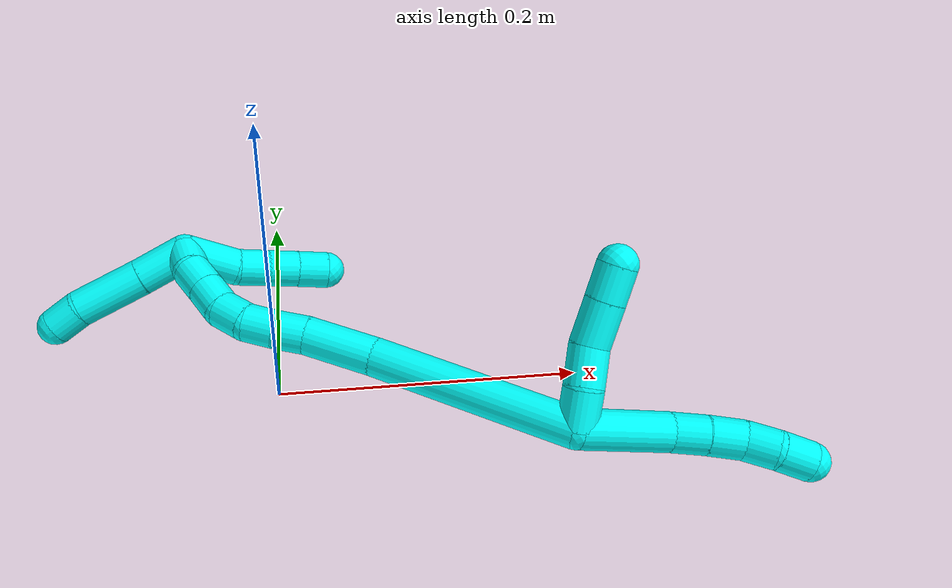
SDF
<sdf version="1.7">
 <world name="default">
  <model name="3">
   <static>0</static>
   <link name="3">
    <collision name="collision-cylinder-e_1_2_8">
     <pose>0.012243 -0.016707 -0.022681 2.5067 0.409994 1.12841</pose>
     <geometry><cylinder><radius>0.0125</radius><length>0.061432</length></cylinder></geometry>
     <surface>
      <friction><ode><mu>1.16</mu><mu2>1.16</mu2><slip1>0</slip1><slip2>0</slip2></ode></friction>
      <contact><ode><kp>1e+06</kp><kd>1</kd><max_vel>0</max_vel><min_depth>0.001</min_depth></ode></contact>
     </surface>
    </collision>
    <visual name="visual-cylinder-e_1_2_8">
     <pose>0.012243 -0.016707 -0.022681 2.5067 0.409994 1.12841</pose>
     <geometry><cylinder><radius>0.0125</radius><length>0.061432</length></cylinder></geometry>
     <material><ambient>0.003922 1 0.996078 1</ambient></material>
    </visual>
    <collision name="collision-cylinder-e_2_8_9">
     <pose>0.03134 -0.037682 -0.053493 2.65831 0.641085 1.8644</pose>
     <geometry><cylinder><radius>0.0125</radius><length>0.022917</length></cylinder></geometry>
     <surface>
      <friction><ode><mu>1.16</mu><mu2>1.16</mu2><slip1>0</slip1><slip2>0</slip2></ode></friction>
      <contact><ode><kp>1e+06</kp><kd>1</kd><max_vel>0</max_vel><min_depth>0.001</min_depth></ode></contact>
     </surface>
    </collision>
    <visual name="visual-cylinder-e_2_8_9">
     <pose>0.03134 -0.037682 -0.053493 2.65831 0.641085 1.8644</pose>
     <geometry><cylinder><radius>0.0125</radius><length>0.022917</length></cylinder></geometry>
     <material><ambient>0.003922 1 0.996078 1</ambient></material>
    </visual>
    <collision name="collision-cylinder-e_3_9_10">
     <pose>0.045148 -0.047001 -0.069573 2.57549 0.636135 1.69444</pose>
     <geometry><cylinder><radius>0.0125</radius><length>0.023414</length></cylinder></geometry>
     <surface>
      <friction><ode><mu>1.16</mu><mu2>1.16</mu2><slip1>0</slip1><slip2>0</slip2></ode></friction>
      <contact><ode><kp>1e+06</kp><kd>1</kd><max_vel>0</max_vel><min_depth>0.001</min_depth></ode></contact>
     </surface>
    </collision>
    <visual name="visual-cylinder-e_3_9_10">
     <pose>0.045148 -0.047001 -0.069573 2.57549 0.636135 1.69444</pose>
     <geometry><cylinder><radius>0.0125</radius><length>0.023414</length></cylinder></geometry>
     <material><ambient>0.003922 1 0.996078 1</ambient></material>
    </visual>
    <collision name="collision-cylinder-e_4_10_11">
     <pose>0.060489 -0.055036 -0.082861 2.632 0.940527 2.19453</pose>
     <geometry><cylinder><radius>0.0125</radius><length>0.02076</length></cylinder></geometry>
     <surface>
      <friction><ode><mu>1.16</mu><mu2>1.16</mu2><slip1>0</slip1><slip2>0</slip2></ode></friction>
      <contact><ode><kp>1e+06</kp><kd>1</kd><max_vel>0</max_vel><min_depth>0.001</min_depth></ode></contact>
     </surface>
    </collision>
    <visual name="visual-cylinder-e_4_10_11">
     <pose>0.060489 -0.055036 -0.082861 2.632 0.940527 2.19453</pose>
     <geometry><cylinder><radius>0.0125</radius><length>0.02076</length></cylinder></geometry>
     <material><ambient>0.003922 1 0.996078 1</ambient></material>
    </visual>
    <collision name="collision-cylinder-e_5_11_6">
     <pose>0.075828 -0.063931 -0.09386 2.33435 0.704406 1.42121</pose>
     <geometry><cylinder><radius>0.0125</radius><length>0.021477</length></cylinder></geometry>
     <surface>
      <friction><ode><mu>1.16</mu><mu2>1.16</mu2><slip1>0</slip1><slip2>0</slip2></ode></friction>
      <contact><ode><kp>1e+06</kp><kd>1</kd><max_vel>0</max_vel><min_depth>0.001</min_depth></ode></contact>
     </surface>
    </collision>
    <visual name="visual-cylinder-e_5_11_6">
     <pose>0.075828 -0.063931 -0.09386 2.33435 0.704406 1.42121</pose>
     <geometry><cylinder><radius>0.0125</radius><length>0.021477</length></cylinder></geometry>
     <material><ambient>0.003922 1 0.996078 1</ambient></material>
    </visual>
    <collision name="collision-cylinder-e_1_2_12">
     <pose>-0.004228 0.007885 -0.008624 -2.40091 -0.347134 0.84834</pose>
     <geometry><cylinder><radius>0.0125</radius><length>0.024854</length></cylinder></geometry>
     <surface>
      <friction><ode><mu>1.16</mu><mu2>1.16</mu2><slip1>0</slip1><slip2>0</slip2></ode></friction>
      <contact><ode><kp>1e+06</kp><kd>1</kd><max_vel>0</max_vel><min_depth>0.001</min_depth></ode></contact>
     </surface>
    </collision>
    <visual name="visual-cylinder-e_1_2_12">
     <pose>-0.004228 0.007885 -0.008624 -2.40091 -0.347134 0.84834</pose>
     <geometry><cylinder><radius>0.0125</radius><length>0.024854</length></cylinder></geometry>
     <material><ambient>0.003922 1 0.996078 1</ambient></material>
    </visual>
    <collision name="collision-cylinder-e_2_12_13">
     <pose>-0.014278 0.021762 -0.026402 -2.56203 -0.489085 1.39366</pose>
     <geometry><cylinder><radius>0.0125</radius><length>0.024787</length></cylinder></geometry>
     <surface>
      <friction><ode><mu>1.16</mu><mu2>1.16</mu2><slip1>0</slip1><slip2>0</slip2></ode></friction>
      <contact><ode><kp>1e+06</kp><kd>1</kd><max_vel>0</max_vel><min_depth>0.001</min_depth></ode></contact>
     </surface>
    </collision>
    <visual name="visual-cylinder-e_2_12_13">
     <pose>-0.014278 0.021762 -0.026402 -2.56203 -0.489085 1.39366</pose>
     <geometry><cylinder><radius>0.0125</radius><length>0.024787</length></cylinder></geometry>
     <material><ambient>0.003922 1 0.996078 1</ambient></material>
    </visual>
    <collision name="collision-cylinder-e_3_13_14">
     <pose>-0.022938 0.036164 -0.046564 -2.48921 -0.202007 0.582183</pose>
     <geometry><cylinder><radius>0.0125</radius><length>0.028282</length></cylinder></geometry>
     <surface>
      <friction><ode><mu>1.16</mu><mu2>1.16</mu2><slip1>0</slip1><slip2>0</slip2></ode></friction>
      <contact><ode><kp>1e+06</kp><kd>1</kd><max_vel>0</max_vel><min_depth>0.001</min_depth></ode></contact>
     </surface>
    </collision>
    <visual name="visual-cylinder-e_3_13_14">
     <pose>-0.022938 0.036164 -0.046564 -2.48921 -0.202007 0.582183</pose>
     <geometry><cylinder><radius>0.0125</radius><length>0.028282</length></cylinder></geometry>
     <material><ambient>0.003922 1 0.996078 1</ambient></material>
    </visual>
    <collision name="collision-cylinder-e_4_14_5">
     <pose>-0.028115 0.05107 -0.066186 -2.49545 -0.213637 0.619889</pose>
     <geometry><cylinder><radius>0.0125</radius><length>0.022077</length></cylinder></geometry>
     <surface>
      <friction><ode><mu>1.16</mu><mu2>1.16</mu2><slip1>0</slip1><slip2>0</slip2></ode></friction>
      <contact><ode><kp>1e+06</kp><kd>1</kd><max_vel>0</max_vel><min_depth>0.001</min_depth></ode></contact>
     </surface>
    </collision>
    <visual name="visual-cylinder-e_4_14_5">
     <pose>-0.028115 0.05107 -0.066186 -2.49545 -0.213637 0.619889</pose>
     <geometry><cylinder><radius>0.0125</radius><length>0.022077</length></cylinder></geometry>
     <material><ambient>0.003922 1 0.996078 1</ambient></material>
    </visual>
    <collision name="collision-cylinder-e_1_2_15">
     <pose>-0.058164 0.014002 0.029221 -0.44684 -1.06253 0.26546</pose>
     <geometry><cylinder><radius>0.0125</radius><length>0.133162</length></cylinder></geometry>
     <surface>
      <friction><ode><mu>1.16</mu><mu2>1.16</mu2><slip1>0</slip1><slip2>0</slip2></ode></friction>
      <contact><ode><kp>1e+06</kp><kd>1</kd><max_vel>0</max_vel><min_depth>0.001</min_depth></ode></contact>
     </surface>
    </collision>
    <visual name="visual-cylinder-e_1_2_15">
     <pose>-0.058164 0.014002 0.029221 -0.44684 -1.06253 0.26546</pose>
     <geometry><cylinder><radius>0.0125</radius><length>0.133162</length></cylinder></geometry>
     <material><ambient>0.003922 1 0.996078 1</ambient></material>
    </visual>
    <collision name="collision-cylinder-e_2_15_16">
     <pose>-0.1346 0.035182 0.06991 -0.559328 -0.933414 0.287396</pose>
     <geometry><cylinder><radius>0.0125</radius><length>0.045471</length></cylinder></geometry>
     <surface>
      <friction><ode><mu>1.16</mu><mu2>1.16</mu2><slip1>0</slip1><slip2>0</slip2></ode></friction>
      <contact><ode><kp>1e+06</kp><kd>1</kd><max_vel>0</max_vel><min_depth>0.001</min_depth></ode></contact>
     </surface>
    </collision>
    <visual name="visual-cylinder-e_2_15_16">
     <pose>-0.1346 0.035182 0.06991 -0.559328 -0.933414 0.287396</pose>
     <geometry><cylinder><radius>0.0125</radius><length>0.045471</length></cylinder></geometry>
     <material><ambient>0.003922 1 0.996078 1</ambient></material>
    </visual>
    <collision name="collision-cylinder-e_3_16_17">
     <pose>-0.159983 0.045731 0.087583 -0.497453 -0.788949 0.210684</pose>
     <geometry><cylinder><radius>0.0125</radius><length>0.020043</length></cylinder></geometry>
     <surface>
      <friction><ode><mu>1.16</mu><mu2>1.16</mu2><slip1>0</slip1><slip2>0</slip2></ode></friction>
      <contact><ode><kp>1e+06</kp><kd>1</kd><max_vel>0</max_vel><min_depth>0.001</min_depth></ode></contact>
     </surface>
    </collision>
    <visual name="visual-cylinder-e_3_16_17">
     <pose>-0.159983 0.045731 0.087583 -0.497453 -0.788949 0.210684</pose>
     <geometry><cylinder><radius>0.0125</radius><length>0.020043</length></cylinder></geometry>
     <material><ambient>0.003922 1 0.996078 1</ambient></material>
    </visual>
    <collision name="collision-cylinder-e_4_17_18">
     <pose>-0.174775 0.052214 0.099419 -0.505109 -0.873511 0.239785</pose>
     <geometry><cylinder><radius>0.0125</radius><length>0.020038</length></cylinder></geometry>
     <surface>
      <friction><ode><mu>1.16</mu><mu2>1.16</mu2><slip1>0</slip1><slip2>0</slip2></ode></friction>
      <contact><ode><kp>1e+06</kp><kd>1</kd><max_vel>0</max_vel><min_depth>0.001</min_depth></ode></contact>
     </surface>
    </collision>
    <visual name="visual-cylinder-e_4_17_18">
     <pose>-0.174775 0.052214 0.099419 -0.505109 -0.873511 0.239785</pose>
     <geometry><cylinder><radius>0.0125</radius><length>0.020038</length></cylinder></geometry>
     <material><ambient>0.003922 1 0.996078 1</ambient></material>
    </visual>
    <collision name="collision-cylinder-e_5_18_19">
     <pose>-0.191936 0.057278 0.108023 -0.580586 -1.21189 0.408217</pose>
     <geometry><cylinder><radius>0.0125</radius><length>0.020252</length></cylinder></geometry>
     <surface>
      <friction><ode><mu>1.16</mu><mu2>1.16</mu2><slip1>0</slip1><slip2>0</slip2></ode></friction>
      <contact><ode><kp>1e+06</kp><kd>1</kd><max_vel>0</max_vel><min_depth>0.001</min_depth></ode></contact>
     </surface>
    </collision>
    <visual name="visual-cylinder-e_5_18_19">
     <pose>-0.191936 0.057278 0.108023 -0.580586 -1.21189 0.408217</pose>
     <geometry><cylinder><radius>0.0125</radius><length>0.020252</length></cylinder></geometry>
     <material><ambient>0.003922 1 0.996078 1</ambient></material>
    </visual>
    <collision name="collision-cylinder-e_6_19_20">
     <pose>-0.211415 0.060811 0.110549 -1.84656 -1.40779 1.68613</pose>
     <geometry><cylinder><radius>0.0125</radius><length>0.020264</length></cylinder></geometry>
     <surface>
      <friction><ode><mu>1.16</mu><mu2>1.16</mu2><slip1>0</slip1><slip2>0</slip2></ode></friction>
      <contact><ode><kp>1e+06</kp><kd>1</kd><max_vel>0</max_vel><min_depth>0.001</min_depth></ode></contact>
     </surface>
    </collision>
    <visual name="visual-cylinder-e_6_19_20">
     <pose>-0.211415 0.060811 0.110549 -1.84656 -1.40779 1.68613</pose>
     <geometry><cylinder><radius>0.0125</radius><length>0.020264</length></cylinder></geometry>
     <material><ambient>0.003922 1 0.996078 1</ambient></material>
    </visual>
    <collision name="collision-cylinder-e_7_20_21">
     <pose>-0.231525 0.063966 0.109797 -1.76181 -1.41365 1.60518</pose>
     <geometry><cylinder><radius>0.0125</radius><length>0.020478</length></cylinder></geometry>
     <surface>
      <friction><ode><mu>1.16</mu><mu2>1.16</mu2><slip1>0</slip1><slip2>0</slip2></ode></friction>
      <contact><ode><kp>1e+06</kp><kd>1</kd><max_vel>0</max_vel><min_depth>0.001</min_depth></ode></contact>
     </surface>
    </collision>
    <visual name="visual-cylinder-e_7_20_21">
     <pose>-0.231525 0.063966 0.109797 -1.76181 -1.41365 1.60518</pose>
     <geometry><cylinder><radius>0.0125</radius><length>0.020478</length></cylinder></geometry>
     <material><ambient>0.003922 1 0.996078 1</ambient></material>
    </visual>
    <collision name="collision-cylinder-e_8_21_1">
     <pose>-0.251444 0.064842 0.106983 2.87031 -1.31115 -2.79032</pose>
     <geometry><cylinder><radius>0.0125</radius><length>0.020292</length></cylinder></geometry>
     <surface>
      <friction><ode><mu>1.16</mu><mu2>1.16</mu2><slip1>0</slip1><slip2>0</slip2></ode></friction>
      <contact><ode><kp>1e+06</kp><kd>1</kd><max_vel>0</max_vel><min_depth>0.001</min_depth></ode></contact>
     </surface>
    </collision>
    <visual name="visual-cylinder-e_8_21_1">
     <pose>-0.251444 0.064842 0.106983 2.87031 -1.31115 -2.79032</pose>
     <geometry><cylinder><radius>0.0125</radius><length>0.020292</length></cylinder></geometry>
     <material><ambient>0.003922 1 0.996078 1</ambient></material>
    </visual>
    <collision name="collision-cylinder-e_1_1_22">
     <pose>-0.264811 0.064271 0.120819 -0.007806 -0.214489 0.00084</pose>
     <geometry><cylinder><radius>0.0125</radius><length>0.033458</length></cylinder></geometry>
     <surface>
      <friction><ode><mu>1.16</mu><mu2>1.16</mu2><slip1>0</slip1><slip2>0</slip2></ode></friction>
      <contact><ode><kp>1e+06</kp><kd>1</kd><max_vel>0</max_vel><min_depth>0.001</min_depth></ode></contact>
     </surface>
    </collision>
    <visual name="visual-cylinder-e_1_1_22">
     <pose>-0.264811 0.064271 0.120819 -0.007806 -0.214489 0.00084</pose>
     <geometry><cylinder><radius>0.0125</radius><length>0.033458</length></cylinder></geometry>
     <material><ambient>0.003922 1 0.996078 1</ambient></material>
    </visual>
    <collision name="collision-cylinder-e_2_22_23">
     <pose>-0.274102 0.064766 0.159343 -0.016566 -0.25279 0.002105</pose>
     <geometry><cylinder><radius>0.0125</radius><length>0.045821</length></cylinder></geometry>
     <surface>
      <friction><ode><mu>1.16</mu><mu2>1.16</mu2><slip1>0</slip1><slip2>0</slip2></ode></friction>
      <contact><ode><kp>1e+06</kp><kd>1</kd><max_vel>0</max_vel><min_depth>0.001</min_depth></ode></contact>
     </surface>
    </collision>
    <visual name="visual-cylinder-e_2_22_23">
     <pose>-0.274102 0.064766 0.159343 -0.016566 -0.25279 0.002105</pose>
     <geometry><cylinder><radius>0.0125</radius><length>0.045821</length></cylinder></geometry>
     <material><ambient>0.003922 1 0.996078 1</ambient></material>
    </visual>
    <collision name="collision-cylinder-e_3_23_4">
     <pose>-0.282335 0.063115 0.191371 0.202126 -0.24404 -0.02487</pose>
     <geometry><cylinder><radius>0.0125</radius><length>0.020721</length></cylinder></geometry>
     <surface>
      <friction><ode><mu>1.16</mu><mu2>1.16</mu2><slip1>0</slip1><slip2>0</slip2></ode></friction>
      <contact><ode><kp>1e+06</kp><kd>1</kd><max_vel>0</max_vel><min_depth>0.001</min_depth></ode></contact>
     </surface>
    </collision>
    <visual name="visual-cylinder-e_3_23_4">
     <pose>-0.282335 0.063115 0.191371 0.202126 -0.24404 -0.02487</pose>
     <geometry><cylinder><radius>0.0125</radius><length>0.020721</length></cylinder></geometry>
     <material><ambient>0.003922 1 0.996078 1</ambient></material>
    </visual>
    <collision name="collision-cylinder-e_1_1_24">
     <pose>-0.252882 0.052013 0.093648 2.29942 0.475359 0.991667</pose>
     <geometry><cylinder><radius>0.0125</radius><length>0.036571</length></cylinder></geometry>
     <surface>
      <friction><ode><mu>1.16</mu><mu2>1.16</mu2><slip1>0</slip1><slip2>0</slip2></ode></friction>
      <contact><ode><kp>1e+06</kp><kd>1</kd><max_vel>0</max_vel><min_depth>0.001</min_depth></ode></contact>
     </surface>
    </collision>
    <visual name="visual-cylinder-e_1_1_24">
     <pose>-0.252882 0.052013 0.093648 2.29942 0.475359 0.991667</pose>
     <geometry><cylinder><radius>0.0125</radius><length>0.036571</length></cylinder></geometry>
     <material><ambient>0.003922 1 0.996078 1</ambient></material>
    </visual>
    <collision name="collision-cylinder-e_2_24_25">
     <pose>-0.241595 0.033482 0.07461 2.4795 0.273228 0.760973</pose>
     <geometry><cylinder><radius>0.0125</radius><length>0.021628</length></cylinder></geometry>
     <surface>
      <friction><ode><mu>1.16</mu><mu2>1.16</mu2><slip1>0</slip1><slip2>0</slip2></ode></friction>
      <contact><ode><kp>1e+06</kp><kd>1</kd><max_vel>0</max_vel><min_depth>0.001</min_depth></ode></contact>
     </surface>
    </collision>
    <visual name="visual-cylinder-e_2_24_25">
     <pose>-0.241595 0.033482 0.07461 2.4795 0.273228 0.760973</pose>
     <geometry><cylinder><radius>0.0125</radius><length>0.021628</length></cylinder></geometry>
     <material><ambient>0.003922 1 0.996078 1</ambient></material>
    </visual>
    <collision name="collision-cylinder-e_3_25_26">
     <pose>-0.234561 0.021766 0.058242 2.5641 0.40004 1.19774</pose>
     <geometry><cylinder><radius>0.0125</radius><length>0.021136</length></cylinder></geometry>
     <surface>
      <friction><ode><mu>1.16</mu><mu2>1.16</mu2><slip1>0</slip1><slip2>0</slip2></ode></friction>
      <contact><ode><kp>1e+06</kp><kd>1</kd><max_vel>0</max_vel><min_depth>0.001</min_depth></ode></contact>
     </surface>
    </collision>
    <visual name="visual-cylinder-e_3_25_26">
     <pose>-0.234561 0.021766 0.058242 2.5641 0.40004 1.19774</pose>
     <geometry><cylinder><radius>0.0125</radius><length>0.021136</length></cylinder></geometry>
     <material><ambient>0.003922 1 0.996078 1</ambient></material>
    </visual>
    <collision name="collision-cylinder-e_4_26_3">
     <pose>-0.226082 0.011406 0.042197 2.57261 0.435961 1.29651</pose>
     <geometry><cylinder><radius>0.0125</radius><length>0.020664</length></cylinder></geometry>
     <surface>
      <friction><ode><mu>1.16</mu><mu2>1.16</mu2><slip1>0</slip1><slip2>0</slip2></ode></friction>
      <contact><ode><kp>1e+06</kp><kd>1</kd><max_vel>0</max_vel><min_depth>0.001</min_depth></ode></contact>
     </surface>
    </collision>
    <visual name="visual-cylinder-e_4_26_3">
     <pose>-0.226082 0.011406 0.042197 2.57261 0.435961 1.29651</pose>
     <geometry><cylinder><radius>0.0125</radius><length>0.020664</length></cylinder></geometry>
     <material><ambient>0.003922 1 0.996078 1</ambient></material>
    </visual>
    <collision name="collision-sphere-3">
     <pose>-0.221719 0.00636 0.034307 0 -0 0</pose>
     <geometry><sphere><radius>0.0125</radius></sphere></geometry>
     <surface>
      <friction><ode><mu>1.16</mu><mu2>1.16</mu2><slip1>0</slip1><slip2>0</slip2></ode></friction>
      <contact><ode><kp>1e+06</kp><kd>1</kd><max_vel>0</max_vel><min_depth>0.001</min_depth></ode></contact>
     </surface>
    </collision>
    <visual name="visual-sphere-3">
     <pose>-0.221719 0.00636 0.034307 0 -0 0</pose>
     <geometry><sphere><radius>0.0125</radius></sphere></geometry>
     <material><ambient>0.003922 1 0.996078 1</ambient></material>
    </visual>
    <collision name="collision-sphere-26">
     <pose>-0.230445 0.016452 0.050086 0 -0 0</pose>
     <geometry><sphere><radius>0.0125</radius></sphere></geometry>
     <surface>
      <friction><ode><mu>1.16</mu><mu2>1.16</mu2><slip1>0</slip1><slip2>0</slip2></ode></friction>
      <contact><ode><kp>1e+06</kp><kd>1</kd><max_vel>0</max_vel><min_depth>0.001</min_depth></ode></contact>
     </surface>
    </collision>
    <visual name="visual-sphere-26">
     <pose>-0.230445 0.016452 0.050086 0 -0 0</pose>
     <geometry><sphere><radius>0.0125</radius></sphere></geometry>
     <material><ambient>0.003922 1 0.996078 1</ambient></material>
    </visual>
    <collision name="collision-sphere-25">
     <pose>-0.238677 0.02708 0.066397 0 -0 0</pose>
     <geometry><sphere><radius>0.0125</radius></sphere></geometry>
     <surface>
      <friction><ode><mu>1.16</mu><mu2>1.16</mu2><slip1>0</slip1><slip2>0</slip2></ode></friction>
      <contact><ode><kp>1e+06</kp><kd>1</kd><max_vel>0</max_vel><min_depth>0.001</min_depth></ode></contact>
     </surface>
    </collision>
    <visual name="visual-sphere-25">
     <pose>-0.238677 0.02708 0.066397 0 -0 0</pose>
     <geometry><sphere><radius>0.0125</radius></sphere></geometry>
     <material><ambient>0.003922 1 0.996078 1</ambient></material>
    </visual>
    <collision name="collision-sphere-24">
     <pose>-0.244513 0.039883 0.082823 0 -0 0</pose>
     <geometry><sphere><radius>0.0125</radius></sphere></geometry>
     <surface>
      <friction><ode><mu>1.16</mu><mu2>1.16</mu2><slip1>0</slip1><slip2>0</slip2></ode></friction>
      <contact><ode><kp>1e+06</kp><kd>1</kd><max_vel>0</max_vel><min_depth>0.001</min_depth></ode></contact>
     </surface>
    </collision>
    <visual name="visual-sphere-24">
     <pose>-0.244513 0.039883 0.082823 0 -0 0</pose>
     <geometry><sphere><radius>0.0125</radius></sphere></geometry>
     <material><ambient>0.003922 1 0.996078 1</ambient></material>
    </visual>
    <collision name="collision-sphere-4">
     <pose>-0.284838 0.061097 0.20122 0 -0 0</pose>
     <geometry><sphere><radius>0.0125</radius></sphere></geometry>
     <surface>
      <friction><ode><mu>1.16</mu><mu2>1.16</mu2><slip1>0</slip1><slip2>0</slip2></ode></friction>
      <contact><ode><kp>1e+06</kp><kd>1</kd><max_vel>0</max_vel><min_depth>0.001</min_depth></ode></contact>
     </surface>
    </collision>
    <visual name="visual-sphere-4">
     <pose>-0.284838 0.061097 0.20122 0 -0 0</pose>
     <geometry><sphere><radius>0.0125</radius></sphere></geometry>
     <material><ambient>0.003922 1 0.996078 1</ambient></material>
    </visual>
    <collision name="collision-sphere-23">
     <pose>-0.279832 0.065134 0.181522 0 -0 0</pose>
     <geometry><sphere><radius>0.0125</radius></sphere></geometry>
     <surface>
      <friction><ode><mu>1.16</mu><mu2>1.16</mu2><slip1>0</slip1><slip2>0</slip2></ode></friction>
      <contact><ode><kp>1e+06</kp><kd>1</kd><max_vel>0</max_vel><min_depth>0.001</min_depth></ode></contact>
     </surface>
    </collision>
    <visual name="visual-sphere-23">
     <pose>-0.279832 0.065134 0.181522 0 -0 0</pose>
     <geometry><sphere><radius>0.0125</radius></sphere></geometry>
     <material><ambient>0.003922 1 0.996078 1</ambient></material>
    </visual>
    <collision name="collision-sphere-22">
     <pose>-0.268372 0.064399 0.137164 0 -0 0</pose>
     <geometry><sphere><radius>0.0125</radius></sphere></geometry>
     <surface>
      <friction><ode><mu>1.16</mu><mu2>1.16</mu2><slip1>0</slip1><slip2>0</slip2></ode></friction>
      <contact><ode><kp>1e+06</kp><kd>1</kd><max_vel>0</max_vel><min_depth>0.001</min_depth></ode></contact>
     </surface>
    </collision>
    <visual name="visual-sphere-22">
     <pose>-0.268372 0.064399 0.137164 0 -0 0</pose>
     <geometry><sphere><radius>0.0125</radius></sphere></geometry>
     <material><ambient>0.003922 1 0.996078 1</ambient></material>
    </visual>
    <collision name="collision-sphere-1">
     <pose>-0.26125 0.064144 0.104474 0 -0 0</pose>
     <geometry><sphere><radius>0.0125</radius></sphere></geometry>
     <surface>
      <friction><ode><mu>1.16</mu><mu2>1.16</mu2><slip1>0</slip1><slip2>0</slip2></ode></friction>
      <contact><ode><kp>1e+06</kp><kd>1</kd><max_vel>0</max_vel><min_depth>0.001</min_depth></ode></contact>
     </surface>
    </collision>
    <visual name="visual-sphere-1">
     <pose>-0.26125 0.064144 0.104474 0 -0 0</pose>
     <geometry><sphere><radius>0.0125</radius></sphere></geometry>
     <material><ambient>0.003922 1 0.996078 1</ambient></material>
    </visual>
    <collision name="collision-sphere-21">
     <pose>-0.241638 0.06554 0.109493 0 -0 0</pose>
     <geometry><sphere><radius>0.0125</radius></sphere></geometry>
     <surface>
      <friction><ode><mu>1.16</mu><mu2>1.16</mu2><slip1>0</slip1><slip2>0</slip2></ode></friction>
      <contact><ode><kp>1e+06</kp><kd>1</kd><max_vel>0</max_vel><min_depth>0.001</min_depth></ode></contact>
     </surface>
    </collision>
    <visual name="visual-sphere-21">
     <pose>-0.241638 0.06554 0.109493 0 -0 0</pose>
     <geometry><sphere><radius>0.0125</radius></sphere></geometry>
     <material><ambient>0.003922 1 0.996078 1</ambient></material>
    </visual>
    <collision name="collision-sphere-6">
     <pose>0.082782 -0.069842 -0.099518 0 -0 0</pose>
     <geometry><sphere><radius>0.0125</radius></sphere></geometry>
     <surface>
      <friction><ode><mu>1.16</mu><mu2>1.16</mu2><slip1>0</slip1><slip2>0</slip2></ode></friction>
      <contact><ode><kp>1e+06</kp><kd>1</kd><max_vel>0</max_vel><min_depth>0.001</min_depth></ode></contact>
     </surface>
    </collision>
    <visual name="visual-sphere-6">
     <pose>0.082782 -0.069842 -0.099518 0 -0 0</pose>
     <geometry><sphere><radius>0.0125</radius></sphere></geometry>
     <material><ambient>0.003922 1 0.996078 1</ambient></material>
    </visual>
    <collision name="collision-sphere-11">
     <pose>0.068874 -0.05802 -0.088202 0 -0 0</pose>
     <geometry><sphere><radius>0.0125</radius></sphere></geometry>
     <surface>
      <friction><ode><mu>1.16</mu><mu2>1.16</mu2><slip1>0</slip1><slip2>0</slip2></ode></friction>
      <contact><ode><kp>1e+06</kp><kd>1</kd><max_vel>0</max_vel><min_depth>0.001</min_depth></ode></contact>
     </surface>
    </collision>
    <visual name="visual-sphere-11">
     <pose>0.068874 -0.05802 -0.088202 0 -0 0</pose>
     <geometry><sphere><radius>0.0125</radius></sphere></geometry>
     <material><ambient>0.003922 1 0.996078 1</ambient></material>
    </visual>
    <collision name="collision-sphere-10">
     <pose>0.052103 -0.052051 -0.077521 0 -0 0</pose>
     <geometry><sphere><radius>0.0125</radius></sphere></geometry>
     <surface>
      <friction><ode><mu>1.16</mu><mu2>1.16</mu2><slip1>0</slip1><slip2>0</slip2></ode></friction>
      <contact><ode><kp>1e+06</kp><kd>1</kd><max_vel>0</max_vel><min_depth>0.001</min_depth></ode></contact>
     </surface>
    </collision>
    <visual name="visual-sphere-10">
     <pose>0.052103 -0.052051 -0.077521 0 -0 0</pose>
     <geometry><sphere><radius>0.0125</radius></sphere></geometry>
     <material><ambient>0.003922 1 0.996078 1</ambient></material>
    </visual>
    <collision name="collision-sphere-9">
     <pose>0.038193 -0.04195 -0.061625 0 -0 0</pose>
     <geometry><sphere><radius>0.0125</radius></sphere></geometry>
     <surface>
      <friction><ode><mu>1.16</mu><mu2>1.16</mu2><slip1>0</slip1><slip2>0</slip2></ode></friction>
      <contact><ode><kp>1e+06</kp><kd>1</kd><max_vel>0</max_vel><min_depth>0.001</min_depth></ode></contact>
     </surface>
    </collision>
    <visual name="visual-sphere-9">
     <pose>0.038193 -0.04195 -0.061625 0 -0 0</pose>
     <geometry><sphere><radius>0.0125</radius></sphere></geometry>
     <material><ambient>0.003922 1 0.996078 1</ambient></material>
    </visual>
    <collision name="collision-sphere-2">
     <geometry><sphere><radius>0.0125</radius></sphere></geometry>
     <surface>
      <friction><ode><mu>1.16</mu><mu2>1.16</mu2><slip1>0</slip1><slip2>0</slip2></ode></friction>
      <contact><ode><kp>1e+06</kp><kd>1</kd><max_vel>0</max_vel><min_depth>0.001</min_depth></ode></contact>
     </surface>
    </collision>
    <visual name="visual-sphere-2">
     <geometry><sphere><radius>0.0125</radius></sphere></geometry>
     <material><ambient>0.003922 1 0.996078 1</ambient></material>
    </visual>
    <collision name="collision-sphere-19">
     <pose>-0.201417 0.059229 0.110997 0 -0 0</pose>
     <geometry><sphere><radius>0.0125</radius></sphere></geometry>
     <surface>
      <friction><ode><mu>1.16</mu><mu2>1.16</mu2><slip1>0</slip1><slip2>0</slip2></ode></friction>
      <contact><ode><kp>1e+06</kp><kd>1</kd><max_vel>0</max_vel><min_depth>0.001</min_depth></ode></contact>
     </surface>
    </collision>
    <visual name="visual-sphere-19">
     <pose>-0.201417 0.059229 0.110997 0 -0 0</pose>
     <geometry><sphere><radius>0.0125</radius></sphere></geometry>
     <material><ambient>0.003922 1 0.996078 1</ambient></material>
    </visual>
    <collision name="collision-sphere-8">
     <pose>0.024487 -0.033415 -0.045362 0 -0 0</pose>
     <geometry><sphere><radius>0.0125</radius></sphere></geometry>
     <surface>
      <friction><ode><mu>1.16</mu><mu2>1.16</mu2><slip1>0</slip1><slip2>0</slip2></ode></friction>
      <contact><ode><kp>1e+06</kp><kd>1</kd><max_vel>0</max_vel><min_depth>0.001</min_depth></ode></contact>
     </surface>
    </collision>
    <visual name="visual-sphere-8">
     <pose>0.024487 -0.033415 -0.045362 0 -0 0</pose>
     <geometry><sphere><radius>0.0125</radius></sphere></geometry>
     <material><ambient>0.003922 1 0.996078 1</ambient></material>
    </visual>
    <collision name="collision-sphere-12">
     <pose>-0.008455 0.015771 -0.017248 0 -0 0</pose>
     <geometry><sphere><radius>0.0125</radius></sphere></geometry>
     <surface>
      <friction><ode><mu>1.16</mu><mu2>1.16</mu2><slip1>0</slip1><slip2>0</slip2></ode></friction>
      <contact><ode><kp>1e+06</kp><kd>1</kd><max_vel>0</max_vel><min_depth>0.001</min_depth></ode></contact>
     </surface>
    </collision>
    <visual name="visual-sphere-12">
     <pose>-0.008455 0.015771 -0.017248 0 -0 0</pose>
     <geometry><sphere><radius>0.0125</radius></sphere></geometry>
     <material><ambient>0.003922 1 0.996078 1</ambient></material>
    </visual>
    <collision name="collision-sphere-13">
     <pose>-0.020101 0.027754 -0.035556 0 -0 0</pose>
     <geometry><sphere><radius>0.0125</radius></sphere></geometry>
     <surface>
      <friction><ode><mu>1.16</mu><mu2>1.16</mu2><slip1>0</slip1><slip2>0</slip2></ode></friction>
      <contact><ode><kp>1e+06</kp><kd>1</kd><max_vel>0</max_vel><min_depth>0.001</min_depth></ode></contact>
     </surface>
    </collision>
    <visual name="visual-sphere-13">
     <pose>-0.020101 0.027754 -0.035556 0 -0 0</pose>
     <geometry><sphere><radius>0.0125</radius></sphere></geometry>
     <material><ambient>0.003922 1 0.996078 1</ambient></material>
    </visual>
    <collision name="collision-sphere-14">
     <pose>-0.025775 0.044575 -0.057573 0 -0 0</pose>
     <geometry><sphere><radius>0.0125</radius></sphere></geometry>
     <surface>
      <friction><ode><mu>1.16</mu><mu2>1.16</mu2><slip1>0</slip1><slip2>0</slip2></ode></friction>
      <contact><ode><kp>1e+06</kp><kd>1</kd><max_vel>0</max_vel><min_depth>0.001</min_depth></ode></contact>
     </surface>
    </collision>
    <visual name="visual-sphere-14">
     <pose>-0.025775 0.044575 -0.057573 0 -0 0</pose>
     <geometry><sphere><radius>0.0125</radius></sphere></geometry>
     <material><ambient>0.003922 1 0.996078 1</ambient></material>
    </visual>
    <collision name="collision-sphere-5">
     <pose>-0.030456 0.057565 -0.074799 0 -0 0</pose>
     <geometry><sphere><radius>0.0125</radius></sphere></geometry>
     <surface>
      <friction><ode><mu>1.16</mu><mu2>1.16</mu2><slip1>0</slip1><slip2>0</slip2></ode></friction>
      <contact><ode><kp>1e+06</kp><kd>1</kd><max_vel>0</max_vel><min_depth>0.001</min_depth></ode></contact>
     </surface>
    </collision>
    <visual name="visual-sphere-5">
     <pose>-0.030456 0.057565 -0.074799 0 -0 0</pose>
     <geometry><sphere><radius>0.0125</radius></sphere></geometry>
     <material><ambient>0.003922 1 0.996078 1</ambient></material>
    </visual>
    <collision name="collision-sphere-15">
     <pose>-0.116329 0.028003 0.058442 0 -0 0</pose>
     <geometry><sphere><radius>0.0125</radius></sphere></geometry>
     <surface>
      <friction><ode><mu>1.16</mu><mu2>1.16</mu2><slip1>0</slip1><slip2>0</slip2></ode></friction>
      <contact><ode><kp>1e+06</kp><kd>1</kd><max_vel>0</max_vel><min_depth>0.001</min_depth></ode></contact>
     </surface>
    </collision>
    <visual name="visual-sphere-15">
     <pose>-0.116329 0.028003 0.058442 0 -0 0</pose>
     <geometry><sphere><radius>0.0125</radius></sphere></geometry>
     <material><ambient>0.003922 1 0.996078 1</ambient></material>
    </visual>
    <collision name="collision-sphere-16">
     <pose>-0.152872 0.042361 0.081378 0 -0 0</pose>
     <geometry><sphere><radius>0.0125</radius></sphere></geometry>
     <surface>
      <friction><ode><mu>1.16</mu><mu2>1.16</mu2><slip1>0</slip1><slip2>0</slip2></ode></friction>
      <contact><ode><kp>1e+06</kp><kd>1</kd><max_vel>0</max_vel><min_depth>0.001</min_depth></ode></contact>
     </surface>
    </collision>
    <visual name="visual-sphere-16">
     <pose>-0.152872 0.042361 0.081378 0 -0 0</pose>
     <geometry><sphere><radius>0.0125</radius></sphere></geometry>
     <material><ambient>0.003922 1 0.996078 1</ambient></material>
    </visual>
    <collision name="collision-sphere-17">
     <pose>-0.167095 0.0491 0.093789 0 -0 0</pose>
     <geometry><sphere><radius>0.0125</radius></sphere></geometry>
     <surface>
      <friction><ode><mu>1.16</mu><mu2>1.16</mu2><slip1>0</slip1><slip2>0</slip2></ode></friction>
      <contact><ode><kp>1e+06</kp><kd>1</kd><max_vel>0</max_vel><min_depth>0.001</min_depth></ode></contact>
     </surface>
    </collision>
    <visual name="visual-sphere-17">
     <pose>-0.167095 0.0491 0.093789 0 -0 0</pose>
     <geometry><sphere><radius>0.0125</radius></sphere></geometry>
     <material><ambient>0.003922 1 0.996078 1</ambient></material>
    </visual>
    <collision name="collision-sphere-18">
     <pose>-0.182455 0.055327 0.105049 0 -0 0</pose>
     <geometry><sphere><radius>0.0125</radius></sphere></geometry>
     <surface>
      <friction><ode><mu>1.16</mu><mu2>1.16</mu2><slip1>0</slip1><slip2>0</slip2></ode></friction>
      <contact><ode><kp>1e+06</kp><kd>1</kd><max_vel>0</max_vel><min_depth>0.001</min_depth></ode></contact>
     </surface>
    </collision>
    <visual name="visual-sphere-18">
     <pose>-0.182455 0.055327 0.105049 0 -0 0</pose>
     <geometry><sphere><radius>0.0125</radius></sphere></geometry>
     <material><ambient>0.003922 1 0.996078 1</ambient></material>
    </visual>
    <collision name="collision-sphere-20">
     <pose>-0.221413 0.062393 0.110102 0 -0 0</pose>
     <geometry><sphere><radius>0.0125</radius></sphere></geometry>
     <surface>
      <friction><ode><mu>1.16</mu><mu2>1.16</mu2><slip1>0</slip1><slip2>0</slip2></ode></friction>
      <contact><ode><kp>1e+06</kp><kd>1</kd><max_vel>0</max_vel><min_depth>0.001</min_depth></ode></contact>
     </surface>
    </collision>
    <visual name="visual-sphere-20">
     <pose>-0.221413 0.062393 0.110102 0 -0 0</pose>
     <geometry><sphere><radius>0.0125</radius></sphere></geometry>
     <material><ambient>0.003922 1 0.996078 1</ambient></material>
    </visual>
    <inertial>
     <pose>-0.115038 0.02343 0.040646 0 -0 0</pose>
     <mass>0.75</mass>
     <inertia>
      <ixx>0.000186</ixx>
      <ixy>0</ixy>
      <ixz>0</ixz>
      <iyy>0.00029</iyy>
      <iyz>0</iyz>
      <izz>0.000146</izz>
     </inertia>
    </inertial>
   </link>
   <pose>0.175761 -0.095352 0.040232 1.96337 0.040235 -1.05588</pose>
  </model>
 </world>
</sdf>
